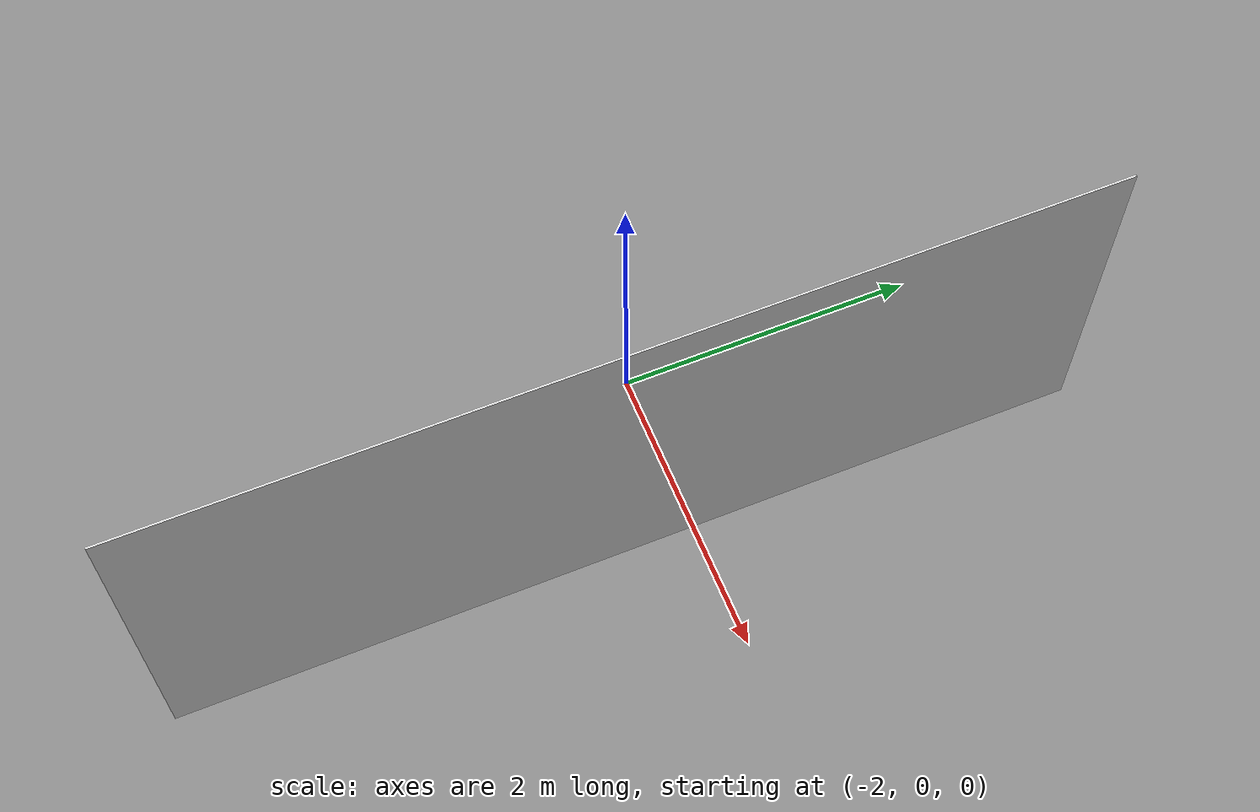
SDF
<?xml version="1.0"?>
<sdf version="1.7">

  <model name="table_top9">
    <link name="table_top9_link">
      <inertial>
        <mass>18.70</mass>
        <inertia>
          <ixx>0.79</ixx>
          <ixy>0</ixy>
          <ixz>0</ixz>
          <iyy>0.53</iyy>
          <iyz>0</iyz>
          <izz>1.2</izz>
        </inertia>
      </inertial>
    <visual name="bottom">
        <pose>-1.25 -0.25 0.445 1.5708 0 1.5708</pose>
        <geometry>
          <box>
            <size>6.49 2.63 0.015</size>
          </box>
        </geometry>
        <material>
          <diffuse>0.9 0.9 0.9 1.0</diffuse>
        </material>
      </visual>
      <collision name="bottom">
        <pose>-1.25 -0.25 0.445 1.5708 0 1.5708</pose>
        <geometry>
          <box>
            <size>6.49 2.63 0.015</size>
          </box>
        </geometry>
        <drake:proximity_properties>
          <drake:compliant_hydroelastic/>
          <drake:hydroelastic_modulus>1.0e6</drake:hydroelastic_modulus>
        </drake:proximity_properties>
      </collision>
    </link>
    <frame name="table_top9_center">
      <pose relative_to="table_top9_link">0 0 0.47 0 0 0</pose>
    </frame>
  </model>
</sdf>
